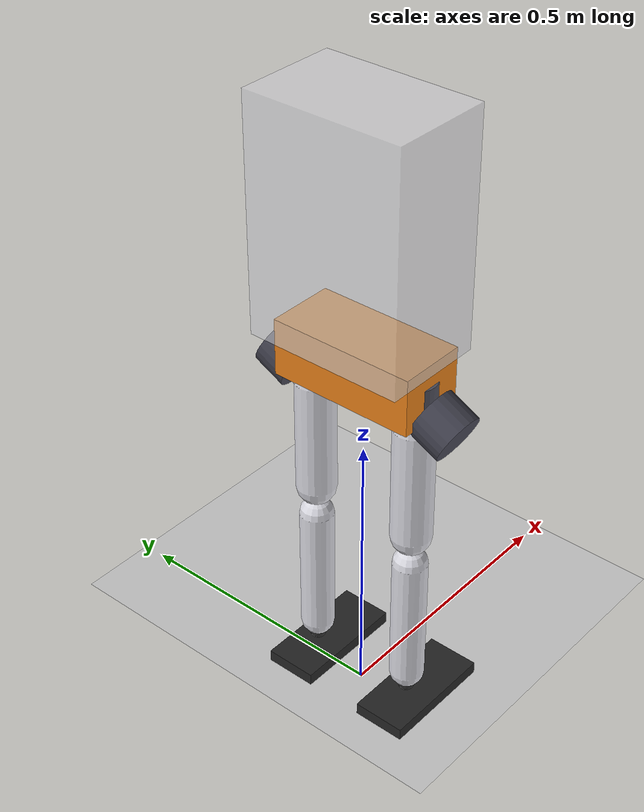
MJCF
<mujoco model="jx1_analysis">
  <compiler angle="radian" autolimits="true"/>
  <option timestep="0.001" gravity="0 0 -9.81" integrator="implicitfast"/>
  <worldbody>
    <geom name="floor" type="plane" size="5 5 0.1" rgba=".8 .8 .8 1"/>
    <light pos="0 0 3" dir="0 0 -1"/>
    <body name="pelvis" pos="0 0 0.62000">
      <freejoint name="root"/>
      <inertial pos="0 0 0.0617792" mass="2.636" diaginertia="0.0226947 0.0040946 0.0231479"/>
      <geom type="box" size="0.06 0.13 0.05" pos="0 0 0.05" rgba=".9 .5 .1 1" contype="0" conaffinity="0"/>
      <site name="imu" pos="0 0 0.05" size="0.01"/>
      <body name="upper_body" pos="0 0 0">
        <inertial pos="-0.0108 0.0005 0.2898" mass="12.015" diaginertia="0.292866 0.242803 0.130163"/>
        <geom type="box" size="0.09 0.14 0.2" pos="-0.0108 0.0005 0.2898" rgba=".9 .9 .92 .6" contype="0" conaffinity="0"/>
      </body>
      <body name="l_hip_yaw_link" pos="0 0.1 0">
<inertial pos="-0.0322347 0 0.0101179" mass="1.781" diaginertia="0.00216487 0.00294867 0.00298083"/>
<joint name="l_hip_yaw" axis="0 0 1" range="-0.698132 0.785398" limited="true" armature="0.01" damping="0.0"/>
<geom type="cylinder" size="0.035 0.03" pos="0 0 0.03" rgba=".3 .3 .35 1" contype="0" conaffinity="0"/>
<body name="l_hip_roll_link" pos="0 0 0">
<inertial pos="0 0.0524934 0" mass="1.895" diaginertia="0.00233385 0.00306267 0.00233385"/>
<joint name="l_hip_roll" axis="1 0 0" range="-0.436332 0.785398" limited="true" armature="0.02" damping="0.0"/>
<geom type="cylinder" size="0.045 0.03" euler="90 0 0" pos="0 0.055 0" rgba=".25 .25 .3 1" contype="0" conaffinity="0"/>
<body name="l_thigh" pos="0 0 0">
<inertial pos="0 0 -0.244597" mass="2.331" diaginertia="0.00990013 0.010807 0.00239308"/>
<joint name="l_hip_pitch" axis="0 1 0" range="-2.007129 0.610865" limited="true" armature="0.04" damping="0.0"/>
<geom type="capsule" fromto="0 0 -0.03 0 0 -0.24000000000000002" size="0.035" rgba=".85 .85 .88 1" contype="0" conaffinity="0"/>
<body name="l_shin" pos="0 0 -0.27">
<inertial pos="0 0 -0.125304" mass="2.746" diaginertia="0.0190127 0.0183916 0.00272576"/>
<joint name="l_knee" axis="0 1 0" range="0.000000 2.094395" limited="true" armature="0.04" damping="0.0"/>
<geom type="capsule" fromto="0 0 -0.03 0 0 -0.27" size="0.03" rgba=".85 .85 .88 1" contype="0" conaffinity="0"/>
<body name="l_ankle_cross" pos="0 0 -0.3">
<inertial pos="0 0 0" mass="0.202" diaginertia="3.03e-05 3.03e-05 3.03e-05"/>
<joint name="l_ankle_pitch" axis="0 1 0" range="-0.959931 0.523599" limited="true" armature="0.02" damping="0.0"/>
<geom type="sphere" size="0.015" rgba=".2 .2 .2 1" contype="0" conaffinity="0"/>
<body name="l_foot" pos="0 0 0">
<inertial pos="0.03 0 -0.035" mass="0.523" diaginertia="0.000432565 0.00196125 0.00231536"/>
<joint name="l_ankle_roll" axis="1 0 0" range="-0.349066 0.349066" limited="true" armature="0.025313" damping="0.0"/>
<geom name="l_foot_geom" type="box" size="0.105 0.0475 0.011" pos="0.03 0 -0.03900000000000001" rgba=".15 .15 .15 1" friction="1.0 0.02 0.001"/><site name="l_sole" pos="0 0 -0.05" size="0.01"/>
</body></body></body></body></body></body>
      <body name="r_hip_yaw_link" pos="0 -0.1 0">
<inertial pos="-0.0322347 -0 0.0101179" mass="1.781" diaginertia="0.00216487 0.00294867 0.00298083"/>
<joint name="r_hip_yaw" axis="0 0 1" range="-0.785398 0.698132" limited="true" armature="0.01" damping="0.0"/>
<geom type="cylinder" size="0.035 0.03" pos="0 0 0.03" rgba=".3 .3 .35 1" contype="0" conaffinity="0"/>
<body name="r_hip_roll_link" pos="0 0 0">
<inertial pos="0 -0.0524934 0" mass="1.895" diaginertia="0.00233385 0.00306267 0.00233385"/>
<joint name="r_hip_roll" axis="1 0 0" range="-0.785398 0.436332" limited="true" armature="0.02" damping="0.0"/>
<geom type="cylinder" size="0.045 0.03" euler="90 0 0" pos="0 -0.055 0" rgba=".25 .25 .3 1" contype="0" conaffinity="0"/>
<body name="r_thigh" pos="0 0 0">
<inertial pos="0 -0 -0.244597" mass="2.331" diaginertia="0.00990013 0.010807 0.00239308"/>
<joint name="r_hip_pitch" axis="0 1 0" range="-2.007129 0.610865" limited="true" armature="0.04" damping="0.0"/>
<geom type="capsule" fromto="0 0 -0.03 0 0 -0.24000000000000002" size="0.035" rgba=".85 .85 .88 1" contype="0" conaffinity="0"/>
<body name="r_shin" pos="0 0 -0.27">
<inertial pos="0 -0 -0.125304" mass="2.746" diaginertia="0.0190127 0.0183916 0.00272576"/>
<joint name="r_knee" axis="0 1 0" range="0.000000 2.094395" limited="true" armature="0.04" damping="0.0"/>
<geom type="capsule" fromto="0 0 -0.03 0 0 -0.27" size="0.03" rgba=".85 .85 .88 1" contype="0" conaffinity="0"/>
<body name="r_ankle_cross" pos="0 0 -0.3">
<inertial pos="0 -0 0" mass="0.202" diaginertia="3.03e-05 3.03e-05 3.03e-05"/>
<joint name="r_ankle_pitch" axis="0 1 0" range="-0.959931 0.523599" limited="true" armature="0.02" damping="0.0"/>
<geom type="sphere" size="0.015" rgba=".2 .2 .2 1" contype="0" conaffinity="0"/>
<body name="r_foot" pos="0 0 0">
<inertial pos="0.03 -0 -0.035" mass="0.523" diaginertia="0.000432565 0.00196125 0.00231536"/>
<joint name="r_ankle_roll" axis="1 0 0" range="-0.349066 0.349066" limited="true" armature="0.025313" damping="0.0"/>
<geom name="r_foot_geom" type="box" size="0.105 0.0475 0.011" pos="0.03 0 -0.03900000000000001" rgba=".15 .15 .15 1" friction="1.0 0.02 0.001"/><site name="r_sole" pos="0 0 -0.05" size="0.01"/>
</body></body></body></body></body></body>
    </body>
  </worldbody>

</mujoco>
